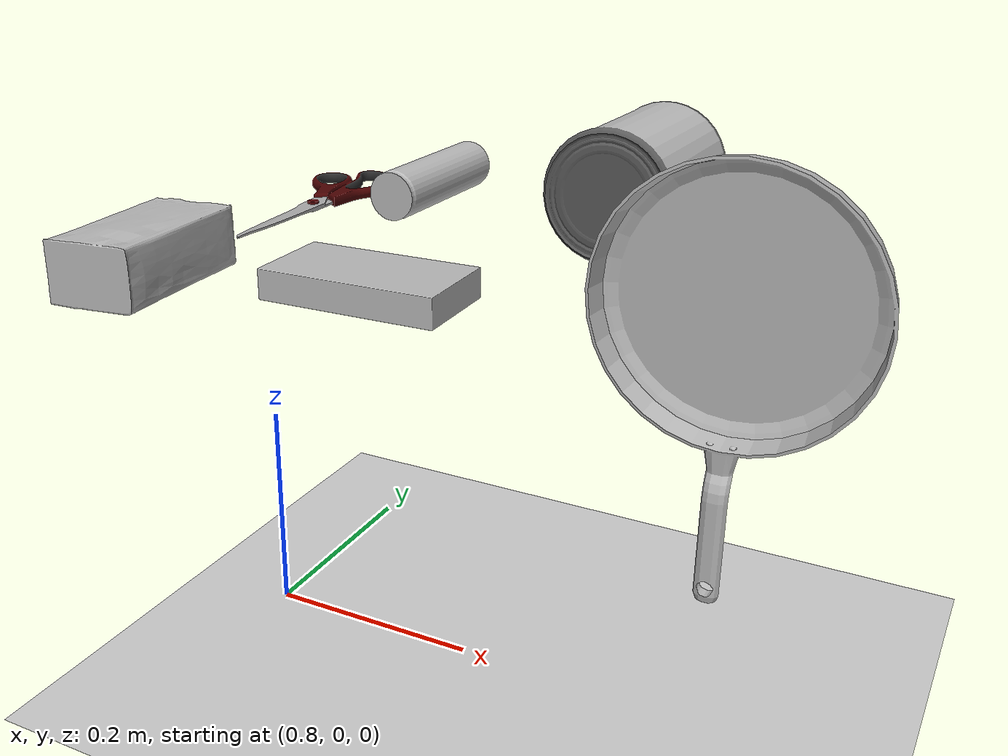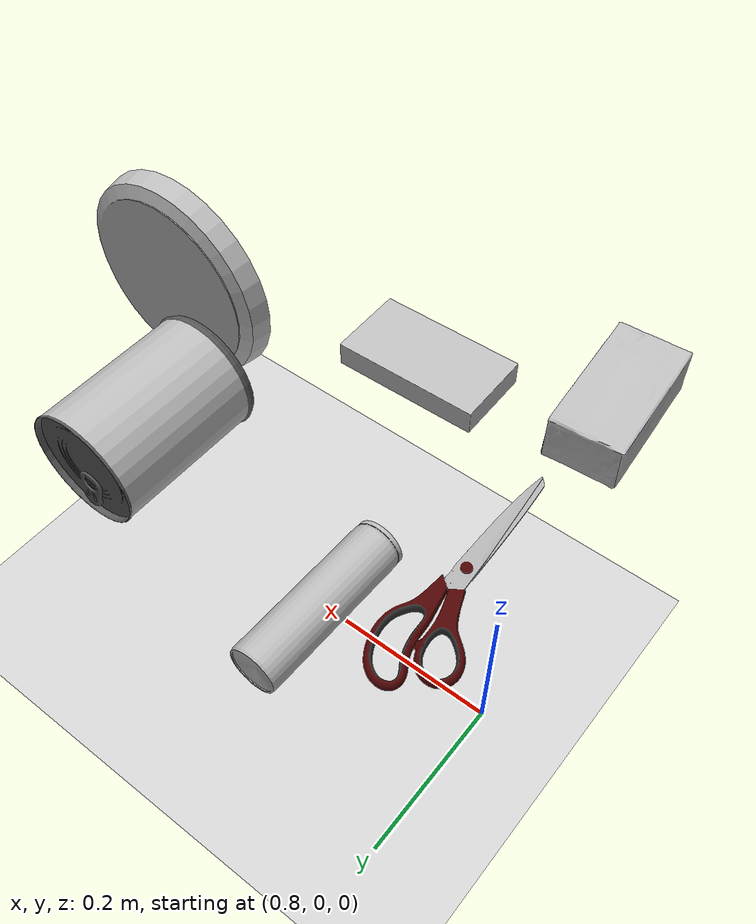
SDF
<sdf version="1.7">
 <world name="default">
  <light name="sun" type="directional">
   <pose>0 0 10 0 -0 0</pose>
   <diffuse>0.8 0.8 0.8 1</diffuse>
   <specular>0.2 0.2 0.2 1</specular>
   <attenuation>
    <range>1000</range>
    <constant>0.9</constant>
    <linear>0.01</linear>
    <quadratic>0.001</quadratic>
   </attenuation>
   <direction>-0.5 0.1 -0.9</direction>
   <spot><inner_angle>0</inner_angle><outer_angle>0</outer_angle><falloff>0</falloff></spot>
  </light>
  <model name="ground_plane">
   <static>1</static>
   <link name="link">
    <collision name="collision">
     <geometry><plane><normal>0 0 1</normal><size>100 100</size></plane></geometry>
     <surface><friction><ode><mu>100</mu><mu2>50</mu2></ode></friction></surface>
    </collision>
    <visual name="visual">
     <cast_shadows>0</cast_shadows>
     <geometry><plane><normal>0 0 1</normal><size>100 100</size></plane></geometry>
     <material>
      <script><uri>file://media/materials/scripts/gazebo.material</uri><name>Gazebo/Grey</name></script>
     </material>
    </visual>
   </link>
  </model>
  <gravity>0 0 -9.8</gravity>
  <magnetic_field>6e-06 2.3e-05 -4.2e-05</magnetic_field>
  <atmosphere type="adiabatic"/>
  <physics type="ode">
   <max_step_size>0.001</max_step_size>
   <real_time_factor>1</real_time_factor>
   <real_time_update_rate>1000</real_time_update_rate>
  </physics>
  <scene><ambient>0.4 0.4 0.4 1</ambient><background>0.7 0.7 0.7 1</background><shadows>1</shadows></scene>
  <spherical_coordinates>
   <surface_model>EARTH_WGS84</surface_model>
   <latitude_deg>0</latitude_deg>
   <longitude_deg>0</longitude_deg>
   <elevation>0</elevation>
   <heading_deg>0</heading_deg>
  </spherical_coordinates>
  <model name="oats_box">
   <link name="link">
    <inertial>
     <mass>0.001</mass>
     <inertia><ixx>1e-05</ixx><ixy>0</ixy><ixz>0</ixz><iyy>1e-05</iyy><iyz>0</iyz><izz>1e-05</izz></inertia>
    </inertial>
    <collision name="collision">
     <geometry><mesh><uri>/home/jan/ws_myrobot/src/myrobot/model/objects/oats/oats.dae</uri></mesh></geometry>
     <surface>
      <friction><ode><mu>1</mu><mu2>1</mu2></ode></friction>
      <contact><ode><kp>1e+07</kp><kd>1</kd><min_depth>0</min_depth><max_vel>0.01</max_vel></ode></contact>
     </surface>
    </collision>
    <visual name="visual">
     <geometry><mesh><uri>/home/jan/ws_myrobot/src/myrobot/model/objects/oats/oats.dae</uri></mesh></geometry>
     <material><lighting>1</lighting><shader type="pixel"/></material>
    </visual>
   </link>
   <static>0</static>
   <pose>0.794096 -0.149437 0.399797 -2.60374 1.54518 -0.949315</pose>
  </model>
  <model name="tea_box">
   <link name="link">
    <inertial>
     <mass>0.001</mass>
     <inertia><ixx>1e-05</ixx><ixy>0</ixy><ixz>0</ixz><iyy>1e-05</iyy><iyz>0</iyz><izz>1e-05</izz></inertia>
    </inertial>
    <collision name="collision">
     <geometry><mesh><uri>/home/jan/ws_myrobot/src/myrobot/model/objects/tea/tea.dae</uri></mesh></geometry>
     <surface>
      <friction><ode><mu>1</mu><mu2>1</mu2></ode></friction>
      <contact><ode><kp>1e+07</kp><kd>1</kd><min_depth>0</min_depth><max_vel>0.01</max_vel></ode></contact>
     </surface>
    </collision>
    <visual name="visual">
     <geometry><mesh><uri>/home/jan/ws_myrobot/src/myrobot/model/objects/tea/tea.dae</uri></mesh></geometry>
     <material><lighting>1</lighting><shader type="pixel"/></material>
    </visual>
   </link>
   <static>0</static>
   <pose>0.967067 -0.095992 0.385747 1.57073 -8.5e-05 1.59073</pose>
  </model>
  <model name="crisps_can">
   <link name="link">
    <inertial>
     <mass>0.001</mass>
     <inertia><ixx>1e-05</ixx><ixy>0</ixy><ixz>0</ixz><iyy>1e-05</iyy><iyz>0</iyz><izz>1e-05</izz></inertia>
    </inertial>
    <collision name="collision">
     <geometry><mesh><uri>/home/jan/ws_myrobot/src/myrobot/model/objects/crisps/crisps.dae</uri></mesh></geometry>
     <surface>
      <friction><ode><mu>1</mu><mu2>1</mu2></ode></friction>
      <contact><ode><kp>1e+07</kp><kd>1</kd><min_depth>0</min_depth><max_vel>0.01</max_vel></ode></contact>
     </surface>
    </collision>
    <visual name="visual">
     <geometry><mesh><uri>/home/jan/ws_myrobot/src/myrobot/model/objects/crisps/crisps.dae</uri></mesh></geometry>
     <material><lighting>1</lighting><shader type="pixel"/></material>
    </visual>
   </link>
   <static>0</static>
   <pose>0.871329 0.176235 0.39624 0 -0.098151 -0.017961</pose>
  </model>
  <model name="soup_can">
   <link name="link">
    <inertial>
     <mass>0.001</mass>
     <inertia><ixx>1e-05</ixx><ixy>0</ixy><ixz>0</ixz><iyy>1e-05</iyy><iyz>0</iyz><izz>1e-05</izz></inertia>
    </inertial>
    <collision name="collision">
     <geometry><mesh><uri>/home/jan/ws_myrobot/src/myrobot/model/objects/soup/soup.dae</uri></mesh></geometry>
     <surface>
      <friction><ode><mu>1</mu><mu2>1</mu2></ode></friction>
      <contact><ode><kp>1e+07</kp><kd>1</kd><min_depth>0</min_depth><max_vel>0.01</max_vel></ode></contact>
     </surface>
    </collision>
    <visual name="visual">
     <geometry><mesh><uri>/home/jan/ws_myrobot/src/myrobot/model/objects/soup/soup.dae</uri></mesh></geometry>
     <material><lighting>1</lighting><shader type="pixel"/></material>
    </visual>
   </link>
   <static>0</static>
   <pose>1.09388 0.138841 0.429213 3.13386 -0.098175 -0.007037</pose>
  </model>
  <model name="Scissors">
   <link name="link">
    <inertial>
     <mass>0.001</mass>
     <inertia><ixx>1e-05</ixx><ixy>0</ixy><ixz>0</ixz><iyy>1e-05</iyy><iyz>0</iyz><izz>1e-05</izz></inertia>
    </inertial>
    <collision name="collision">
     <geometry>
      <mesh><uri>/home/jan/ws_myrobot/src/myrobot/model/objects/scissors/scissors.dae</uri></mesh>
     </geometry>
     <surface>
      <friction><ode><mu>1</mu><mu2>1</mu2></ode></friction>
      <contact><ode><kp>1e+07</kp><kd>1</kd><min_depth>0</min_depth><max_vel>0.01</max_vel></ode></contact>
     </surface>
    </collision>
    <visual name="visual">
     <geometry>
      <mesh><uri>/home/jan/ws_myrobot/src/myrobot/model/objects/scissors/scissors.dae</uri></mesh>
     </geometry>
     <material><lighting>1</lighting><shader type="pixel"/></material>
    </visual>
   </link>
   <static>0</static>
   <pose>0.795664 0.115006 0.386001 0 -0 0</pose>
  </model>
  <model name="Frying_pan">
   <link name="link">
    <inertial>
     <mass>0.001</mass>
     <inertia><ixx>1e-05</ixx><ixy>0</ixy><ixz>0</ixz><iyy>1e-05</iyy><iyz>0</iyz><izz>1e-05</izz></inertia>
    </inertial>
    <collision name="collision">
     <geometry><mesh><uri>/home/jan/ws_myrobot/src/myrobot/model/objects/pan/pan.dae</uri></mesh></geometry>
     <surface>
      <friction><ode><mu>1</mu><mu2>1</mu2></ode></friction>
      <contact><ode><kp>1e+07</kp><kd>1</kd><min_depth>0</min_depth><max_vel>0.01</max_vel></ode></contact>
     </surface>
    </collision>
    <visual name="visual">
     <geometry><mesh><uri>/home/jan/ws_myrobot/src/myrobot/model/objects/pan/pan.dae</uri></mesh></geometry>
     <material><lighting>1</lighting><shader type="pixel"/></material>
    </visual>
   </link>
   <static>0</static>
   <pose>1.23405 -0.018862 0.38765 0 -0 0</pose>
  </model>
 </world>
</sdf>
